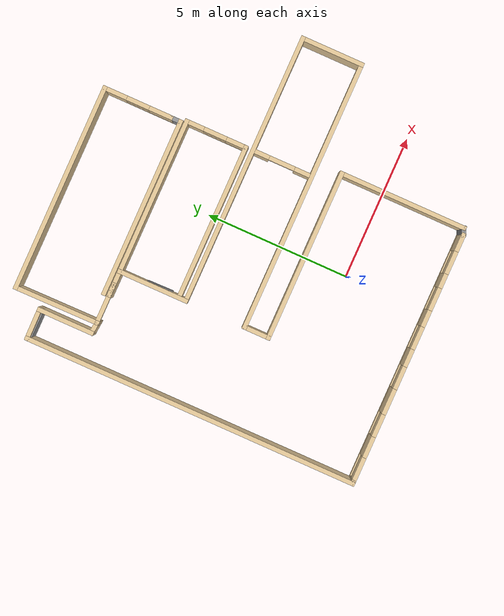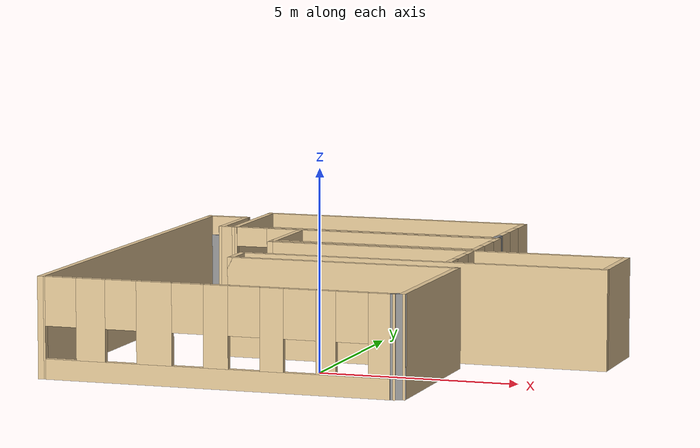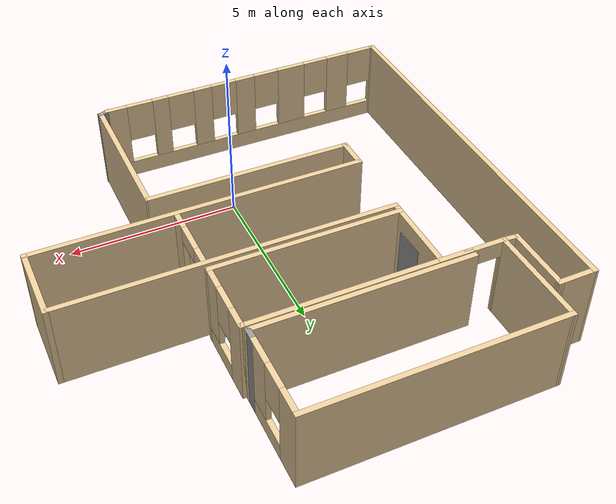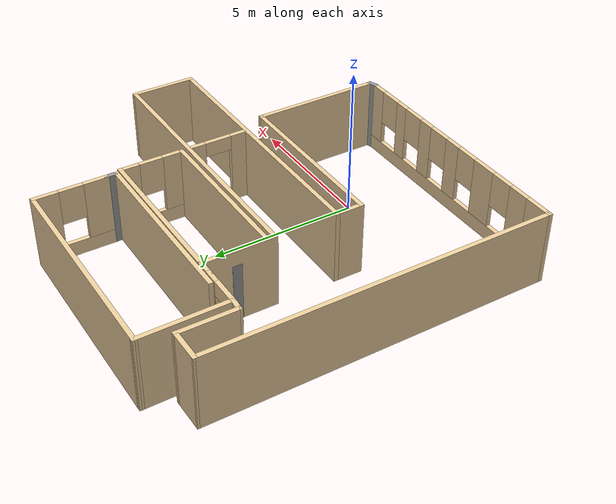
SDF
<?xml version='1.0'?>
<sdf version='1.6'>
  <model name='myapt'>
    <pose frame=''>0.203222 3.42469 0 0 -0 0</pose>
    <link name='Door_1'>
      <collision name='Door_1_Collision'>
        <geometry>
          <box>
            <size>0.9 0.17 2</size>
          </box>
        </geometry>
        <pose frame=''>0 0 1 0 -0 0</pose>
      </collision>
      <visual name='Door_1_Visual'>
        <pose frame=''>0 0 1 0 -0 0</pose>
        <geometry>
          <box>
            <size>0.9 0.17 2</size>
          </box>
        </geometry>
        <material>
          <script>
            <uri>file://media/materials/scripts/gazebo.material</uri>
            <name>Gazebo/Grey</name>
          </script>
        </material>
      </visual>
      <pose frame=''>-5.76208 5.28273 0 0 -0 0</pose>
    </link>
    <link name='Door_3'>
      <collision name='Door_3_Collision'>
        <geometry>
          <box>
            <size>0.9 0.17 2</size>
          </box>
        </geometry>
        <pose frame=''>0 0 1 0 -0 0</pose>
      </collision>
      <visual name='Door_3_Visual'>
        <pose frame=''>0 0 1 0 -0 0</pose>
        <geometry>
          <box>
            <size>0.9 0.17 2</size>
          </box>
        </geometry>
        <material>
          <script>
            <uri>file://media/materials/scripts/gazebo.material</uri>
            <name>Gazebo/Grey</name>
          </script>
        </material>
      </visual>
      <pose frame=''>-3.05351 2.05745 0 0 -0 1.58922</pose>
    </link>
    <link name='Wall_0'>
      <collision name='Wall_0_Collision'>
        <geometry>
          <box>
            <size>11.75 0.15 2.5</size>
          </box>
        </geometry>
        <pose frame=''>0 0 1.25 0 -0 0</pose>
      </collision>
      <visual name='Wall_0_Visual'>
        <pose frame=''>0 0 1.25 0 -0 0</pose>
        <geometry>
          <box>
            <size>11.75 0.15 2.5</size>
          </box>
        </geometry>
        <material>
          <script>
            <uri>file://media/materials/scripts/gazebo.material</uri>
            <name>Gazebo/Grey</name>
          </script>
          <ambient>0.921569 0.807843 0.615686 1</ambient>
        </material>
        <meta>
          <layer>0</layer>
        </meta>
      </visual>
      <pose frame=''>-6.28322 -0.494691 0 0 -0 1.5708</pose>
    </link>
    <link name='Wall_10'>
      <collision name='Wall_10_Collision'>
        <geometry>
          <box>
            <size>7.25 0.15 2.5</size>
          </box>
        </geometry>
        <pose frame=''>0 0 1.25 0 -0 0</pose>
      </collision>
      <visual name='Wall_10_Visual'>
        <pose frame=''>0 0 1.25 0 -0 0</pose>
        <geometry>
          <box>
            <size>7.25 0.15 2.5</size>
          </box>
        </geometry>
        <material>
          <script>
            <uri>file://media/materials/scripts/gazebo.material</uri>
            <name>Gazebo/Grey</name>
          </script>
          <ambient>0.921569 0.807843 0.615686 1</ambient>
        </material>
        <meta>
          <layer>0</layer>
        </meta>
      </visual>
      <pose frame=''>-1.36726 6.31579 0 0 -0 0</pose>
    </link>
    <link name='Wall_11'>
      <pose frame=''>2.18274 5.14079 0 0 0 -1.5708</pose>
      <visual name='Wall_11_Visual_0'>
        <pose frame=''>-0.817925 0 1.25 0 -0 0</pose>
        <geometry>
          <box>
            <size>0.86415 0.15 2.5</size>
          </box>
        </geometry>
        <material>
          <script>
            <uri>file://media/materials/scripts/gazebo.material</uri>
            <name>Gazebo/Grey</name>
          </script>
          <ambient>0.921569 0.807843 0.615686 1</ambient>
        </material>
        <meta>
          <layer>0</layer>
        </meta>
      </visual>
      <collision name='Wall_11_Collision_0'>
        <geometry>
          <box>
            <size>0.86415 0.15 2.5</size>
          </box>
        </geometry>
        <pose frame=''>-0.817925 0 1.25 0 -0 0</pose>
      </collision>
      <visual name='Wall_11_Visual_1'>
        <pose frame=''>0.432075 0 0.25 0 -0 0</pose>
        <geometry>
          <box>
            <size>1.63585 0.15 0.5</size>
          </box>
        </geometry>
        <material>
          <script>
            <uri>file://media/materials/scripts/gazebo.material</uri>
            <name>Gazebo/Grey</name>
          </script>
          <ambient>0.921569 0.807843 0.615686 1</ambient>
        </material>
        <meta>
          <layer>0</layer>
        </meta>
      </visual>
      <collision name='Wall_11_Collision_1'>
        <geometry>
          <box>
            <size>1.63585 0.15 0.5</size>
          </box>
        </geometry>
        <pose frame=''>0.432075 0 0.25 0 -0 0</pose>
      </collision>
      <visual name='Wall_11_Visual_2'>
        <pose frame=''>0.832075 0 1.5 0 -0 0</pose>
        <geometry>
          <box>
            <size>0.83585 0.15 2</size>
          </box>
        </geometry>
        <material>
          <script>
            <uri>file://media/materials/scripts/gazebo.material</uri>
            <name>Gazebo/Grey</name>
          </script>
          <ambient>0.921569 0.807843 0.615686 1</ambient>
        </material>
        <meta>
          <layer>0</layer>
        </meta>
      </visual>
      <collision name='Wall_11_Collision_2'>
        <geometry>
          <box>
            <size>0.83585 0.15 2</size>
          </box>
        </geometry>
        <pose frame=''>0.832075 0 1.5 0 -0 0</pose>
      </collision>
      <visual name='Wall_11_Visual_3'>
        <pose frame=''>0.01415 0 1.9 0 -0 0</pose>
        <geometry>
          <box>
            <size>0.8 0.15 1.2</size>
          </box>
        </geometry>
        <material>
          <script>
            <uri>file://media/materials/scripts/gazebo.material</uri>
            <name>Gazebo/Grey</name>
          </script>
          <ambient>0.921569 0.807843 0.615686 1</ambient>
        </material>
        <meta>
          <layer>0</layer>
        </meta>
      </visual>
      <collision name='Wall_11_Collision_3'>
        <geometry>
          <box>
            <size>0.8 0.15 1.2</size>
          </box>
        </geometry>
        <pose frame=''>0.01415 0 1.9 0 -0 0</pose>
      </collision>
    </link>
    <link name='Wall_12'>
      <collision name='Wall_12_Collision'>
        <geometry>
          <box>
            <size>0.5 0.15 2.5</size>
          </box>
        </geometry>
        <pose frame=''>0 0 1.25 0 -0 0</pose>
      </collision>
      <visual name='Wall_12_Visual'>
        <pose frame=''>0 0 1.25 0 -0 0</pose>
        <geometry>
          <box>
            <size>0.5 0.15 2.5</size>
          </box>
        </geometry>
        <material>
          <script>
            <uri>file://media/materials/scripts/gazebo.material</uri>
            <name>Gazebo/Grey</name>
          </script>
          <ambient>1 1 1 1</ambient>
        </material>
        <meta>
          <layer>0</layer>
        </meta>
      </visual>
      <pose frame=''>2.18274 3.79079 0 0 0 -1.5708</pose>
    </link>
    <link name='Wall_13'>
      <collision name='Wall_13_Collision'>
        <geometry>
          <box>
            <size>6.25 0.15 2.5</size>
          </box>
        </geometry>
        <pose frame=''>0 0 1.25 0 -0 0</pose>
      </collision>
      <visual name='Wall_13_Visual'>
        <pose frame=''>0 0 1.25 0 -0 0</pose>
        <geometry>
          <box>
            <size>6.25 0.15 2.5</size>
          </box>
        </geometry>
        <material>
          <script>
            <uri>file://media/materials/scripts/gazebo.material</uri>
            <name>Gazebo/Grey</name>
          </script>
          <ambient>0.921569 0.807843 0.615686 1</ambient>
        </material>
        <meta>
          <layer>0</layer>
        </meta>
      </visual>
      <pose frame=''>-0.867258 3.61579 0 0 -0 3.14159</pose>
    </link>
    <link name='Wall_15'>
      <collision name='Wall_15_Collision'>
        <geometry>
          <box>
            <size>1.16602 0.15 2.5</size>
          </box>
        </geometry>
        <pose frame=''>0 0 1.25 0 -0 0</pose>
      </collision>
      <visual name='Wall_15_Visual'>
        <pose frame=''>0 0 1.25 0 -0 0</pose>
        <geometry>
          <box>
            <size>1.16602 0.15 2.5</size>
          </box>
        </geometry>
        <material>
          <script>
            <uri>file://media/materials/scripts/gazebo.material</uri>
            <name>Gazebo/Grey</name>
          </script>
          <ambient>0.921569 0.807843 0.615686 1</ambient>
        </material>
        <meta>
          <layer>0</layer>
        </meta>
      </visual>
      <pose frame=''>-5.77524 5.31055 0 0 0 -3.13128</pose>
    </link>
    <link name='Wall_19'>
      <pose frame=''>-1.85822 -6.29469 0 0 -0 0</pose>
      <visual name='Wall_19_Visual_0'>
        <pose frame=''>-4.40267 0 1.25 0 -0 0</pose>
        <geometry>
          <box>
            <size>0.194654 0.15 2.5</size>
          </box>
        </geometry>
        <material>
          <script>
            <uri>file://media/materials/scripts/gazebo.material</uri>
            <name>Gazebo/Grey</name>
          </script>
          <ambient>0.921569 0.807843 0.615686 1</ambient>
        </material>
        <meta>
          <layer>0</layer>
        </meta>
      </visual>
      <collision name='Wall_19_Collision_0'>
        <geometry>
          <box>
            <size>0.194654 0.15 2.5</size>
          </box>
        </geometry>
        <pose frame=''>-4.40267 0 1.25 0 -0 0</pose>
      </collision>
      <visual name='Wall_19_Visual_1'>
        <pose frame=''>0.097327 0 0.25 0 -0 0</pose>
        <geometry>
          <box>
            <size>8.80535 0.15 0.5</size>
          </box>
        </geometry>
        <material>
          <script>
            <uri>file://media/materials/scripts/gazebo.material</uri>
            <name>Gazebo/Grey</name>
          </script>
          <ambient>0.921569 0.807843 0.615686 1</ambient>
        </material>
        <meta>
          <layer>0</layer>
        </meta>
      </visual>
      <collision name='Wall_19_Collision_1'>
        <geometry>
          <box>
            <size>8.80535 0.15 0.5</size>
          </box>
        </geometry>
        <pose frame=''>0.097327 0 0.25 0 -0 0</pose>
      </collision>
      <visual name='Wall_19_Visual_2'>
        <pose frame=''>-3.13243 0 1.5 0 -0 0</pose>
        <geometry>
          <box>
            <size>0.745837 0.15 2</size>
          </box>
        </geometry>
        <material>
          <script>
            <uri>file://media/materials/scripts/gazebo.material</uri>
            <name>Gazebo/Grey</name>
          </script>
          <ambient>0.921569 0.807843 0.615686 1</ambient>
        </material>
        <meta>
          <layer>0</layer>
        </meta>
      </visual>
      <collision name='Wall_19_Collision_2'>
        <geometry>
          <box>
            <size>0.745837 0.15 2</size>
          </box>
        </geometry>
        <pose frame=''>-3.13243 0 1.5 0 -0 0</pose>
      </collision>
      <visual name='Wall_19_Visual_3'>
        <pose frame=''>-1.5093 0 1.5 0 -0 0</pose>
        <geometry>
          <box>
            <size>0.900421 0.15 2</size>
          </box>
        </geometry>
        <material>
          <script>
            <uri>file://media/materials/scripts/gazebo.material</uri>
            <name>Gazebo/Grey</name>
          </script>
          <ambient>0.921569 0.807843 0.615686 1</ambient>
        </material>
        <meta>
          <layer>0</layer>
        </meta>
      </visual>
      <collision name='Wall_19_Collision_3'>
        <geometry>
          <box>
            <size>0.900421 0.15 2</size>
          </box>
        </geometry>
        <pose frame=''>-1.5093 0 1.5 0 -0 0</pose>
      </collision>
      <visual name='Wall_19_Visual_4'>
        <pose frame=''>0.050591 0 1.5 0 -0 0</pose>
        <geometry>
          <box>
            <size>0.61936 0.15 2</size>
          </box>
        </geometry>
        <material>
          <script>
            <uri>file://media/materials/scripts/gazebo.material</uri>
            <name>Gazebo/Grey</name>
          </script>
          <ambient>0.921569 0.807843 0.615686 1</ambient>
        </material>
        <meta>
          <layer>0</layer>
        </meta>
      </visual>
      <collision name='Wall_19_Collision_4'>
        <geometry>
          <box>
            <size>0.61936 0.15 2</size>
          </box>
        </geometry>
        <pose frame=''>0.050591 0 1.5 0 -0 0</pose>
      </collision>
      <visual name='Wall_19_Visual_5'>
        <pose frame=''>1.45239 0 1.5 0 -0 0</pose>
        <geometry>
          <box>
            <size>0.584227 0.15 2</size>
          </box>
        </geometry>
        <material>
          <script>
            <uri>file://media/materials/scripts/gazebo.material</uri>
            <name>Gazebo/Grey</name>
          </script>
          <ambient>0.921569 0.807843 0.615686 1</ambient>
        </material>
        <meta>
          <layer>0</layer>
        </meta>
      </visual>
      <collision name='Wall_19_Collision_5'>
        <geometry>
          <box>
            <size>0.584227 0.15 2</size>
          </box>
        </geometry>
        <pose frame=''>1.45239 0 1.5 0 -0 0</pose>
      </collision>
      <visual name='Wall_19_Visual_6'>
        <pose frame=''>2.79445 0 1.5 0 -0 0</pose>
        <geometry>
          <box>
            <size>0.499908 0.15 2</size>
          </box>
        </geometry>
        <material>
          <script>
            <uri>file://media/materials/scripts/gazebo.material</uri>
            <name>Gazebo/Grey</name>
          </script>
          <ambient>0.921569 0.807843 0.615686 1</ambient>
        </material>
        <meta>
          <layer>0</layer>
        </meta>
      </visual>
      <collision name='Wall_19_Collision_6'>
        <geometry>
          <box>
            <size>0.499908 0.15 2</size>
          </box>
        </geometry>
        <pose frame=''>2.79445 0 1.5 0 -0 0</pose>
      </collision>
      <visual name='Wall_19_Visual_7'>
        <pose frame=''>4.1722 0 1.5 0 -0 0</pose>
        <geometry>
          <box>
            <size>0.655593 0.15 2</size>
          </box>
        </geometry>
        <material>
          <script>
            <uri>file://media/materials/scripts/gazebo.material</uri>
            <name>Gazebo/Grey</name>
          </script>
          <ambient>0.921569 0.807843 0.615686 1</ambient>
        </material>
        <meta>
          <layer>0</layer>
        </meta>
      </visual>
      <collision name='Wall_19_Collision_7'>
        <geometry>
          <box>
            <size>0.655593 0.15 2</size>
          </box>
        </geometry>
        <pose frame=''>4.1722 0 1.5 0 -0 0</pose>
      </collision>
      <visual name='Wall_19_Visual_8'>
        <pose frame=''>-3.90535 0 1.9 0 -0 0</pose>
        <geometry>
          <box>
            <size>0.8 0.15 1.2</size>
          </box>
        </geometry>
        <material>
          <script>
            <uri>file://media/materials/scripts/gazebo.material</uri>
            <name>Gazebo/Grey</name>
          </script>
          <ambient>0.921569 0.807843 0.615686 1</ambient>
        </material>
        <meta>
          <layer>0</layer>
        </meta>
      </visual>
      <collision name='Wall_19_Collision_8'>
        <geometry>
          <box>
            <size>0.8 0.15 1.2</size>
          </box>
        </geometry>
        <pose frame=''>-3.90535 0 1.9 0 -0 0</pose>
      </collision>
      <visual name='Wall_19_Visual_9'>
        <pose frame=''>-2.35951 0 1.9 0 -0 0</pose>
        <geometry>
          <box>
            <size>0.8 0.15 1.2</size>
          </box>
        </geometry>
        <material>
          <script>
            <uri>file://media/materials/scripts/gazebo.material</uri>
            <name>Gazebo/Grey</name>
          </script>
          <ambient>0.921569 0.807843 0.615686 1</ambient>
        </material>
        <meta>
          <layer>0</layer>
        </meta>
      </visual>
      <collision name='Wall_19_Collision_9'>
        <geometry>
          <box>
            <size>0.8 0.15 1.2</size>
          </box>
        </geometry>
        <pose frame=''>-2.35951 0 1.9 0 -0 0</pose>
      </collision>
      <visual name='Wall_19_Visual_10'>
        <pose frame=''>-0.659088 0 1.9 0 -0 0</pose>
        <geometry>
          <box>
            <size>0.8 0.15 1.2</size>
          </box>
        </geometry>
        <material>
          <script>
            <uri>file://media/materials/scripts/gazebo.material</uri>
            <name>Gazebo/Grey</name>
          </script>
          <ambient>0.921569 0.807843 0.615686 1</ambient>
        </material>
        <meta>
          <layer>0</layer>
        </meta>
      </visual>
      <collision name='Wall_19_Collision_10'>
        <geometry>
          <box>
            <size>0.8 0.15 1.2</size>
          </box>
        </geometry>
        <pose frame=''>-0.659088 0 1.9 0 -0 0</pose>
      </collision>
      <visual name='Wall_19_Visual_11'>
        <pose frame=''>0.760271 0 1.9 0 -0 0</pose>
        <geometry>
          <box>
            <size>0.8 0.15 1.2</size>
          </box>
        </geometry>
        <material>
          <script>
            <uri>file://media/materials/scripts/gazebo.material</uri>
            <name>Gazebo/Grey</name>
          </script>
          <ambient>0.921569 0.807843 0.615686 1</ambient>
        </material>
        <meta>
          <layer>0</layer>
        </meta>
      </visual>
      <collision name='Wall_19_Collision_11'>
        <geometry>
          <box>
            <size>0.8 0.15 1.2</size>
          </box>
        </geometry>
        <pose frame=''>0.760271 0 1.9 0 -0 0</pose>
      </collision>
      <visual name='Wall_19_Visual_12'>
        <pose frame=''>2.1445 0 1.9 0 -0 0</pose>
        <geometry>
          <box>
            <size>0.8 0.15 1.2</size>
          </box>
        </geometry>
        <material>
          <script>
            <uri>file://media/materials/scripts/gazebo.material</uri>
            <name>Gazebo/Grey</name>
          </script>
          <ambient>0.921569 0.807843 0.615686 1</ambient>
        </material>
        <meta>
          <layer>0</layer>
        </meta>
      </visual>
      <collision name='Wall_19_Collision_12'>
        <geometry>
          <box>
            <size>0.8 0.15 1.2</size>
          </box>
        </geometry>
        <pose frame=''>2.1445 0 1.9 0 -0 0</pose>
      </collision>
      <visual name='Wall_19_Visual_13'>
        <pose frame=''>3.44441 0 1.9 0 -0 0</pose>
        <geometry>
          <box>
            <size>0.8 0.15 1.2</size>
          </box>
        </geometry>
        <material>
          <script>
            <uri>file://media/materials/scripts/gazebo.material</uri>
            <name>Gazebo/Grey</name>
          </script>
          <ambient>0.921569 0.807843 0.615686 1</ambient>
        </material>
        <meta>
          <layer>0</layer>
        </meta>
      </visual>
      <collision name='Wall_19_Collision_13'>
        <geometry>
          <box>
            <size>0.8 0.15 1.2</size>
          </box>
        </geometry>
        <pose frame=''>3.44441 0 1.9 0 -0 0</pose>
      </collision>
    </link>
    <link name='Wall_2'>
      <collision name='Wall_2_Collision'>
        <geometry>
          <box>
            <size>2 0.15 2.5</size>
          </box>
        </geometry>
        <pose frame=''>0 0 1.25 0 -0 0</pose>
      </collision>
      <visual name='Wall_2_Visual'>
        <pose frame=''>0 0 1.25 0 -0 0</pose>
        <geometry>
          <box>
            <size>2 0.15 2.5</size>
          </box>
        </geometry>
        <material>
          <script>
            <uri>file://media/materials/scripts/gazebo.material</uri>
            <name>Gazebo/Grey</name>
          </script>
          <ambient>0.921569 0.807843 0.615686 1</ambient>
        </material>
        <meta>
          <layer>0</layer>
        </meta>
      </visual>
      <pose frame=''>-5.26726 4.39079 0 0 0 -1.5708</pose>
    </link>
    <link name='Wall_25'>
      <collision name='Wall_25_Collision'>
        <geometry>
          <box>
            <size>2.5 0.15 2.5</size>
          </box>
        </geometry>
        <pose frame=''>0 0 1.25 0 -0 0</pose>
      </collision>
      <visual name='Wall_25_Visual'>
        <pose frame=''>0 0 1.25 0 -0 0</pose>
        <geometry>
          <box>
            <size>2.5 0.15 2.5</size>
          </box>
        </geometry>
        <material>
          <script>
            <uri>file://media/materials/scripts/gazebo.material</uri>
            <name>Gazebo/Grey</name>
          </script>
          <ambient>0.921569 0.807843 0.615686 1</ambient>
        </material>
        <meta>
          <layer>0</layer>
        </meta>
      </visual>
      <pose frame=''>-3.06601 2.26245 0 0 0 -1.5708</pose>
    </link>
    <link name='Wall_26'>
      <collision name='Wall_26_Collision'>
        <geometry>
          <box>
            <size>9.5 0.15 2.5</size>
          </box>
        </geometry>
        <pose frame=''>0 0 1.25 0 -0 0</pose>
      </collision>
      <visual name='Wall_26_Visual'>
        <pose frame=''>0 0 1.25 0 -0 0</pose>
        <geometry>
          <box>
            <size>9.5 0.15 2.5</size>
          </box>
        </geometry>
        <material>
          <script>
            <uri>file://media/materials/scripts/gazebo.material</uri>
            <name>Gazebo/Grey</name>
          </script>
          <ambient>0.921569 0.807843 0.615686 1</ambient>
        </material>
        <meta>
          <layer>0</layer>
        </meta>
      </visual>
      <pose frame=''>1.60899 1.08745 0 0 -0 0</pose>
    </link>
    <link name='Wall_27'>
      <collision name='Wall_27_Collision'>
        <geometry>
          <box>
            <size>2.25 0.15 2.5</size>
          </box>
        </geometry>
        <pose frame=''>0 0 1.25 0 -0 0</pose>
      </collision>
      <visual name='Wall_27_Visual'>
        <pose frame=''>0 0 1.25 0 -0 0</pose>
        <geometry>
          <box>
            <size>2.25 0.15 2.5</size>
          </box>
        </geometry>
        <material>
          <script>
            <uri>file://media/materials/scripts/gazebo.material</uri>
            <name>Gazebo/Grey</name>
          </script>
          <ambient>0.921569 0.807843 0.615686 1</ambient>
        </material>
        <meta>
          <layer>0</layer>
        </meta>
      </visual>
      <pose frame=''>6.28399 0.037453 0 0 0 -1.5708</pose>
    </link>
    <link name='Wall_28'>
      <collision name='Wall_28_Collision'>
        <geometry>
          <box>
            <size>9.5 0.15 2.5</size>
          </box>
        </geometry>
        <pose frame=''>0 0 1.25 0 -0 0</pose>
      </collision>
      <visual name='Wall_28_Visual'>
        <pose frame=''>0 0 1.25 0 -0 0</pose>
        <geometry>
          <box>
            <size>9.5 0.15 2.5</size>
          </box>
        </geometry>
        <material>
          <script>
            <uri>file://media/materials/scripts/gazebo.material</uri>
            <name>Gazebo/Grey</name>
          </script>
          <ambient>0.921569 0.807843 0.615686 1</ambient>
        </material>
        <meta>
          <layer>0</layer>
        </meta>
      </visual>
      <pose frame=''>1.60899 -1.01255 0 0 -0 3.14159</pose>
    </link>
    <link name='Wall_3'>
      <collision name='Wall_3_Collision'>
        <geometry>
          <box>
            <size>0.524646 0.15 2.5</size>
          </box>
        </geometry>
        <pose frame=''>0 0 1.25 0 -0 0</pose>
      </collision>
      <visual name='Wall_3_Visual'>
        <pose frame=''>0 0 1.25 0 -0 0</pose>
        <geometry>
          <box>
            <size>0.524646 0.15 2.5</size>
          </box>
        </geometry>
        <material>
          <script>
            <uri>file://media/materials/scripts/gazebo.material</uri>
            <name>Gazebo/Grey</name>
          </script>
          <ambient>0.921569 0.807843 0.615686 1</ambient>
        </material>
        <meta>
          <layer>0</layer>
        </meta>
      </visual>
      <pose frame=''>-5.08064 3.44952 0 0 0 -0.086922</pose>
    </link>
    <link name='Wall_31'>
      <collision name='Wall_31_Collision'>
        <geometry>
          <box>
            <size>1 0.15 2.5</size>
          </box>
        </geometry>
        <pose frame=''>0 0 1.25 0 -0 0</pose>
      </collision>
      <visual name='Wall_31_Visual'>
        <pose frame=''>0 0 1.25 0 -0 0</pose>
        <geometry>
          <box>
            <size>1 0.15 2.5</size>
          </box>
        </geometry>
        <material>
          <script>
            <uri>file://media/materials/scripts/gazebo.material</uri>
            <name>Gazebo/Grey</name>
          </script>
          <ambient>0.921569 0.807843 0.615686 1</ambient>
        </material>
        <meta>
          <layer>0</layer>
        </meta>
      </visual>
      <pose frame=''>-3.06601 -1.43755 0 0 0 -1.5708</pose>
    </link>
    <link name='Wall_32'>
      <collision name='Wall_32_Collision'>
        <geometry>
          <box>
            <size>6 0.15 2.5</size>
          </box>
        </geometry>
        <pose frame=''>0 0 1.25 0 -0 0</pose>
      </collision>
      <visual name='Wall_32_Visual'>
        <pose frame=''>0 0 1.25 0 -0 0</pose>
        <geometry>
          <box>
            <size>6 0.15 2.5</size>
          </box>
        </geometry>
        <material>
          <script>
            <uri>file://media/materials/scripts/gazebo.material</uri>
            <name>Gazebo/Grey</name>
          </script>
          <ambient>0.921569 0.807843 0.615686 1</ambient>
        </material>
        <meta>
          <layer>0</layer>
        </meta>
      </visual>
      <pose frame=''>-0.141008 -1.86255 0 0 -0 0</pose>
    </link>
    <link name='Wall_33'>
      <collision name='Wall_33_Collision'>
        <geometry>
          <box>
            <size>4.5 0.15 2.5</size>
          </box>
        </geometry>
        <pose frame=''>0 0 1.25 0 -0 0</pose>
      </collision>
      <visual name='Wall_33_Visual'>
        <pose frame=''>0 0 1.25 0 -0 0</pose>
        <geometry>
          <box>
            <size>4.5 0.15 2.5</size>
          </box>
        </geometry>
        <material>
          <script>
            <uri>file://media/materials/scripts/gazebo.material</uri>
            <name>Gazebo/Grey</name>
          </script>
          <ambient>0.921569 0.807843 0.615686 1</ambient>
        </material>
        <meta>
          <layer>0</layer>
        </meta>
      </visual>
      <pose frame=''>2.78399 -4.03755 0 0 0 -1.5708</pose>
    </link>
    <link name='Wall_35'>
      <collision name='Wall_35_Collision'>
        <geometry>
          <box>
            <size>0.382228 0.15 2.5</size>
          </box>
        </geometry>
        <pose frame=''>0 0 1.25 0 -0 0</pose>
      </collision>
      <visual name='Wall_35_Visual'>
        <pose frame=''>0 0 1.25 0 -0 0</pose>
        <geometry>
          <box>
            <size>0.382228 0.15 2.5</size>
          </box>
        </geometry>
        <material>
          <script>
            <uri>file://media/materials/scripts/gazebo.material</uri>
            <name>Gazebo/Grey</name>
          </script>
          <ambient>1 1 1 1</ambient>
        </material>
        <meta>
          <layer>0</layer>
        </meta>
      </visual>
      <pose frame=''>2.67538 -6.25362 0 0 0 -2.78004</pose>
    </link>
    <link name='Wall_37'>
      <collision name='Wall_37_Collision'>
        <geometry>
          <box>
            <size>5.5 0.15 2.5</size>
          </box>
        </geometry>
        <pose frame=''>0 0 1.25 0 -0 0</pose>
      </collision>
      <visual name='Wall_37_Visual'>
        <pose frame=''>0 0 1.25 0 -0 0</pose>
        <geometry>
          <box>
            <size>5.5 0.15 2.5</size>
          </box>
        </geometry>
        <material>
          <script>
            <uri>file://media/materials/scripts/gazebo.material</uri>
            <name>Gazebo/Grey</name>
          </script>
          <ambient>0.921569 0.807843 0.615686 1</ambient>
        </material>
        <meta>
          <layer>0</layer>
        </meta>
      </visual>
      <pose frame=''>-0.391008 3.43745 0 0 -0 0</pose>
    </link>
    <link name='Wall_38'>
      <pose frame=''>2.28399 2.38745 0 0 0 -1.5708</pose>
      <visual name='Wall_38_Visual_0'>
        <pose frame=''>-0.778718 0 1.25 0 -0 0</pose>
        <geometry>
          <box>
            <size>0.692564 0.15 2.5</size>
          </box>
        </geometry>
        <material>
          <script>
            <uri>file://media/materials/scripts/gazebo.material</uri>
            <name>Gazebo/Grey</name>
          </script>
          <ambient>0.921569 0.807843 0.615686 1</ambient>
        </material>
        <meta>
          <layer>0</layer>
        </meta>
      </visual>
      <collision name='Wall_38_Collision_0'>
        <geometry>
          <box>
            <size>0.692564 0.15 2.5</size>
          </box>
        </geometry>
        <pose frame=''>-0.778718 0 1.25 0 -0 0</pose>
      </collision>
      <visual name='Wall_38_Visual_1'>
        <pose frame=''>0.346282 0 0.25 0 -0 0</pose>
        <geometry>
          <box>
            <size>1.55744 0.15 0.5</size>
          </box>
        </geometry>
        <material>
          <script>
            <uri>file://media/materials/scripts/gazebo.material</uri>
            <name>Gazebo/Grey</name>
          </script>
          <ambient>0.921569 0.807843 0.615686 1</ambient>
        </material>
        <meta>
          <layer>0</layer>
        </meta>
      </visual>
      <collision name='Wall_38_Collision_1'>
        <geometry>
          <box>
            <size>1.55744 0.15 0.5</size>
          </box>
        </geometry>
        <pose frame=''>0.346282 0 0.25 0 -0 0</pose>
      </collision>
      <visual name='Wall_38_Visual_2'>
        <pose frame=''>0.746282 0 1.5 0 -0 0</pose>
        <geometry>
          <box>
            <size>0.757436 0.15 2</size>
          </box>
        </geometry>
        <material>
          <script>
            <uri>file://media/materials/scripts/gazebo.material</uri>
            <name>Gazebo/Grey</name>
          </script>
          <ambient>0.921569 0.807843 0.615686 1</ambient>
        </material>
        <meta>
          <layer>0</layer>
        </meta>
      </visual>
      <collision name='Wall_38_Collision_2'>
        <geometry>
          <box>
            <size>0.757436 0.15 2</size>
          </box>
        </geometry>
        <pose frame=''>0.746282 0 1.5 0 -0 0</pose>
      </collision>
      <visual name='Wall_38_Visual_3'>
        <pose frame=''>-0.032436 0 1.9 0 -0 0</pose>
        <geometry>
          <box>
            <size>0.8 0.15 1.2</size>
          </box>
        </geometry>
        <material>
          <script>
            <uri>file://media/materials/scripts/gazebo.material</uri>
            <name>Gazebo/Grey</name>
          </script>
          <ambient>0.921569 0.807843 0.615686 1</ambient>
        </material>
        <meta>
          <layer>0</layer>
        </meta>
      </visual>
      <collision name='Wall_38_Collision_3'>
        <geometry>
          <box>
            <size>0.8 0.15 1.2</size>
          </box>
        </geometry>
        <pose frame=''>-0.032436 0 1.9 0 -0 0</pose>
      </collision>
    </link>
    <link name='Wall_39'>
      <collision name='Wall_39_Collision'>
        <geometry>
          <box>
            <size>5.5 0.15 2.5</size>
          </box>
        </geometry>
        <pose frame=''>0 0 1.25 0 -0 0</pose>
      </collision>
      <visual name='Wall_39_Visual'>
        <pose frame=''>0 0 1.25 0 -0 0</pose>
        <geometry>
          <box>
            <size>5.5 0.15 2.5</size>
          </box>
        </geometry>
        <material>
          <script>
            <uri>file://media/materials/scripts/gazebo.material</uri>
            <name>Gazebo/Grey</name>
          </script>
          <ambient>0.921569 0.807843 0.615686 1</ambient>
        </material>
        <meta>
          <layer>0</layer>
        </meta>
      </visual>
      <pose frame=''>-0.391008 1.33745 0 0 -0 3.14159</pose>
    </link>
    <link name='Wall_41'>
      <pose frame=''>2.29511 0.036644 0 0 -0 1.5708</pose>
      <visual name='Wall_41_Visual_0'>
        <pose frame=''>-0.717579 0 1.25 0 -0 0</pose>
        <geometry>
          <box>
            <size>0.564843 0.15 2.5</size>
          </box>
        </geometry>
        <material>
          <script>
            <uri>file://media/materials/scripts/gazebo.material</uri>
            <name>Gazebo/Grey</name>
          </script>
          <ambient>0.921569 0.807843 0.615686 1</ambient>
        </material>
        <meta>
          <layer>0</layer>
        </meta>
      </visual>
      <collision name='Wall_41_Collision_0'>
        <geometry>
          <box>
            <size>0.564843 0.15 2.5</size>
          </box>
        </geometry>
        <pose frame=''>-0.717579 0 1.25 0 -0 0</pose>
      </collision>
      <visual name='Wall_41_Visual_1'>
        <pose frame=''>0.732421 0 1.25 0 -0 0</pose>
        <geometry>
          <box>
            <size>0.535157 0.15 2.5</size>
          </box>
        </geometry>
        <material>
          <script>
            <uri>file://media/materials/scripts/gazebo.material</uri>
            <name>Gazebo/Grey</name>
          </script>
          <ambient>0.921569 0.807843 0.615686 1</ambient>
        </material>
        <meta>
          <layer>0</layer>
        </meta>
      </visual>
      <collision name='Wall_41_Collision_1'>
        <geometry>
          <box>
            <size>0.535157 0.15 2.5</size>
          </box>
        </geometry>
        <pose frame=''>0.732421 0 1.25 0 -0 0</pose>
      </collision>
      <visual name='Wall_41_Visual_2'>
        <pose frame=''>0.014843 0 2.25 0 -0 0</pose>
        <geometry>
          <box>
            <size>0.9 0.15 0.5</size>
          </box>
        </geometry>
        <material>
          <script>
            <uri>file://media/materials/scripts/gazebo.material</uri>
            <name>Gazebo/Grey</name>
          </script>
          <ambient>0.921569 0.807843 0.615686 1</ambient>
        </material>
        <meta>
          <layer>0</layer>
        </meta>
      </visual>
      <collision name='Wall_41_Collision_2'>
        <geometry>
          <box>
            <size>0.9 0.15 0.5</size>
          </box>
        </geometry>
        <pose frame=''>0.014843 0 2.25 0 -0 0</pose>
      </collision>
    </link>
    <link name='Wall_43'>
      <pose frame=''>-4.21903 3.43791 0 0 -0 0</pose>
      <visual name='Wall_43_Visual_0'>
        <pose frame=''>-0.702427 0 1.25 0 -0 0</pose>
        <geometry>
          <box>
            <size>0.095147 0.15 2.5</size>
          </box>
        </geometry>
        <material>
          <script>
            <uri>file://media/materials/scripts/gazebo.material</uri>
            <name>Gazebo/Grey</name>
          </script>
          <ambient>0.921569 0.807843 0.615686 1</ambient>
        </material>
        <meta>
          <layer>0</layer>
        </meta>
      </visual>
      <collision name='Wall_43_Collision_0'>
        <geometry>
          <box>
            <size>0.095147 0.15 2.5</size>
          </box>
        </geometry>
        <pose frame=''>-0.702427 0 1.25 0 -0 0</pose>
      </collision>
      <visual name='Wall_43_Visual_1'>
        <pose frame=''>0.497573 0 1.25 0 -0 0</pose>
        <geometry>
          <box>
            <size>0.504853 0.15 2.5</size>
          </box>
        </geometry>
        <material>
          <script>
            <uri>file://media/materials/scripts/gazebo.material</uri>
            <name>Gazebo/Grey</name>
          </script>
          <ambient>0.921569 0.807843 0.615686 1</ambient>
        </material>
        <meta>
          <layer>0</layer>
        </meta>
      </visual>
      <collision name='Wall_43_Collision_1'>
        <geometry>
          <box>
            <size>0.504853 0.15 2.5</size>
          </box>
        </geometry>
        <pose frame=''>0.497573 0 1.25 0 -0 0</pose>
      </collision>
      <visual name='Wall_43_Visual_2'>
        <pose frame=''>-0.204853 0 2.25 0 -0 0</pose>
        <geometry>
          <box>
            <size>0.9 0.15 0.5</size>
          </box>
        </geometry>
        <material>
          <script>
            <uri>file://media/materials/scripts/gazebo.material</uri>
            <name>Gazebo/Grey</name>
          </script>
          <ambient>0.921569 0.807843 0.615686 1</ambient>
        </material>
        <meta>
          <layer>0</layer>
        </meta>
      </visual>
      <collision name='Wall_43_Collision_2'>
        <geometry>
          <box>
            <size>0.9 0.15 0.5</size>
          </box>
        </geometry>
        <pose frame=''>-0.204853 0 2.25 0 -0 0</pose>
      </collision>
    </link>
    <link name='Wall_5'>
      <collision name='Wall_5_Collision'>
        <geometry>
          <box>
            <size>1 0.15 2.5</size>
          </box>
        </geometry>
        <pose frame=''>0 0 1.25 0 -0 0</pose>
      </collision>
      <visual name='Wall_5_Visual'>
        <pose frame=''>0 0 1.25 0 -0 0</pose>
        <geometry>
          <box>
            <size>1 0.15 2.5</size>
          </box>
        </geometry>
        <material>
          <script>
            <uri>file://media/materials/scripts/gazebo.material</uri>
            <name>Gazebo/Grey</name>
          </script>
          <ambient>0.921569 0.807843 0.615686 1</ambient>
        </material>
        <meta>
          <layer>0</layer>
        </meta>
      </visual>
      <pose frame=''>-3.49101 3.43745 0 0 -0 0</pose>
    </link>
    <link name='Wall_9'>
      <collision name='Wall_9_Collision'>
        <geometry>
          <box>
            <size>3.03258 0.15 2.5</size>
          </box>
        </geometry>
        <pose frame=''>0 0 1.25 0 -0 0</pose>
      </collision>
      <visual name='Wall_9_Visual'>
        <pose frame=''>0 0 1.25 0 -0 0</pose>
        <geometry>
          <box>
            <size>3.03258 0.15 2.5</size>
          </box>
        </geometry>
        <material>
          <script>
            <uri>file://media/materials/scripts/gazebo.material</uri>
            <name>Gazebo/Grey</name>
          </script>
          <ambient>0.921569 0.807843 0.615686 1</ambient>
        </material>
        <meta>
          <layer>0</layer>
        </meta>
      </visual>
      <pose frame=''>-4.90564 4.87452 0 0 -0 1.57886</pose>
    </link>
    <static>1</static>
  </model>
</sdf>
